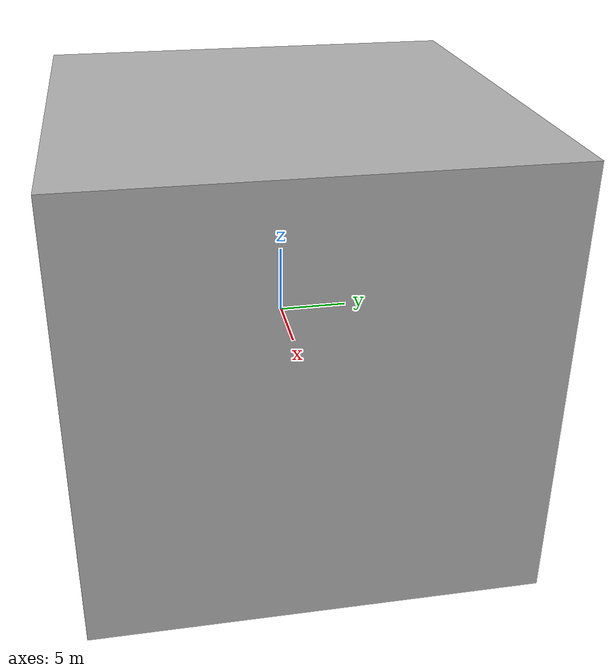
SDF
<?xml version="1.0" ?>
<sdf version="1.6">
  <model name="number1big">
    <pose>0 0 0.4 0 0 0</pose>
    <static>true</static>
    <link name="link">
      <visual name="visual">
        <geometry>
          <mesh>
            <uri>model://number1/meshes/number.dae</uri>
            <scale>40 40 40</scale>
          </mesh>
        </geometry>
        <material>
          <script>
            <uri>model://number1/materials/scripts</uri>
            <scale>10 10 10</scale>
            <uri>model://number1/materials/textures</uri>
            <scale>10 10 10</scale>
            <name>Number/OneBig</name>
          </script>
        </material>
      </visual>

      <collision name="collision">
        <geometry>
          <mesh>
            <uri>model://number1/meshes/number.dae</uri>
            <scale>40 40 40</scale>
          </mesh>
        </geometry>
      </collision>

    </link>
  </model>
</sdf>
